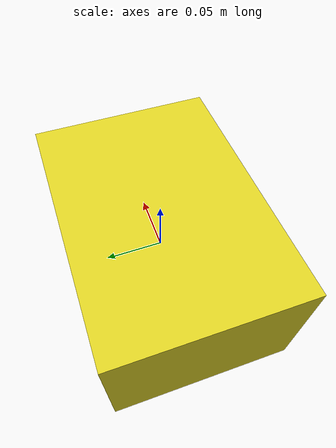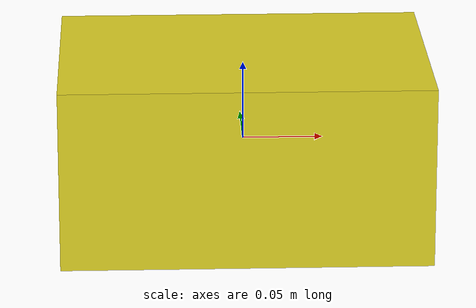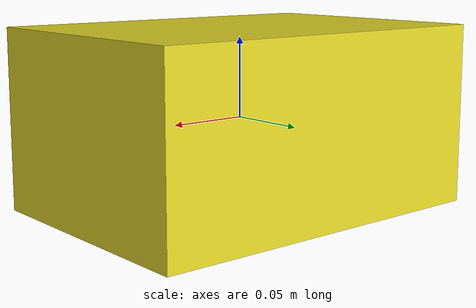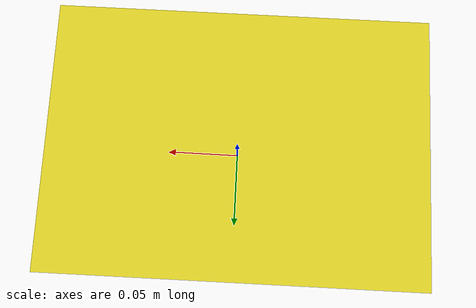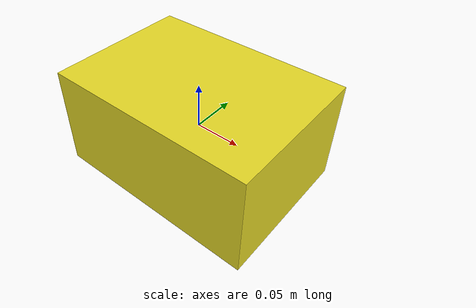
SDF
<?xml version="1.0"?>
<sdf version="1.6">
  <model name="box_yellow">
    <link name="link">
      <inertial>
        <mass>0.095</mass>
        <inertia>
          <ixx>0.00016352</ixx>
          <ixy>0</ixy>
          <ixz>0</ixz>
          <iyy>0.00027373</iyy>
          <iyz>0</iyz>
          <izz>0.00032967</izz>
        </inertia>
      </inertial>
      <collision name="collision">
        <geometry>
          <box>
            <size>0.229751 0.162283 0.113616</size>
          </box>
        </geometry>
        <surface>
          <friction>
            <ode>
              <mu>1</mu>
              <mu2>1</mu2>
            </ode>
          </friction>
          <contact>
            <ode>
              <kp>1e+13</kp>
              <kd>1</kd>
              <max_vel>0.01</max_vel>
              <min_depth>0</min_depth>
            </ode>
          </contact>
        </surface>
      </collision>
      <visual name="visual">
        <geometry>
          <box>
            <size>0.229751 0.162283 0.113616</size>
          </box>
        </geometry>
        <material>
          <script>
            <name>Gazebo/Yellow</name>
            <uri>file://media/materials/scripts/gazebo.material</uri>
          </script>
          <ambient>1 1 0 1</ambient>
          <diffuse>1 1 0 1</diffuse>
          <specular>0.1 0.1 0.1 1</specular>
        </material>
      </visual>
    </link>
    <static>false</static>
  </model>
</sdf>
